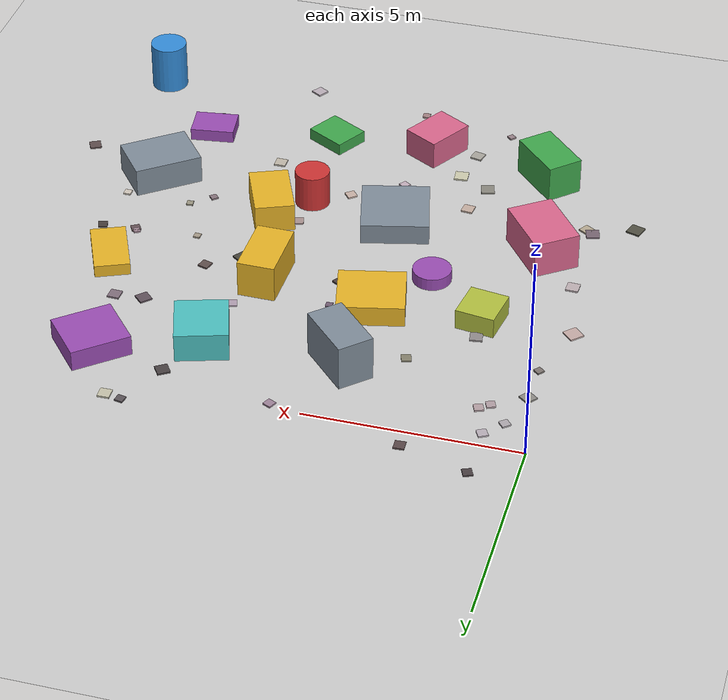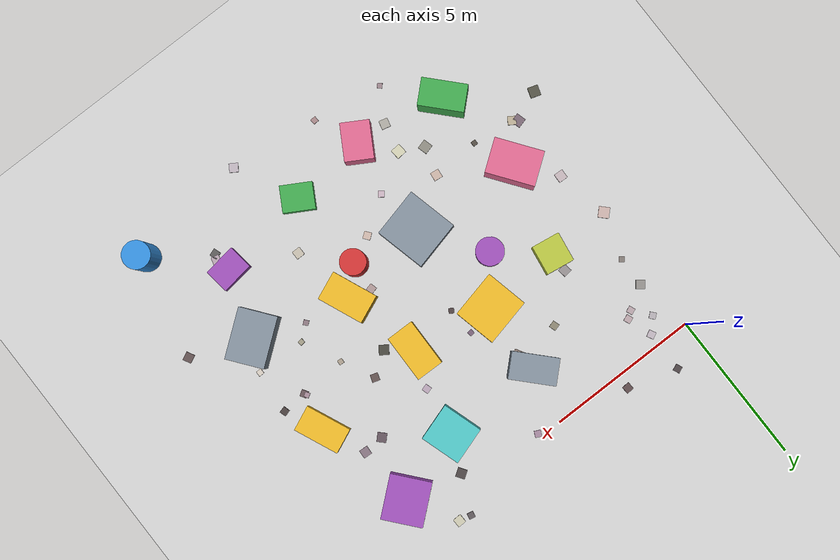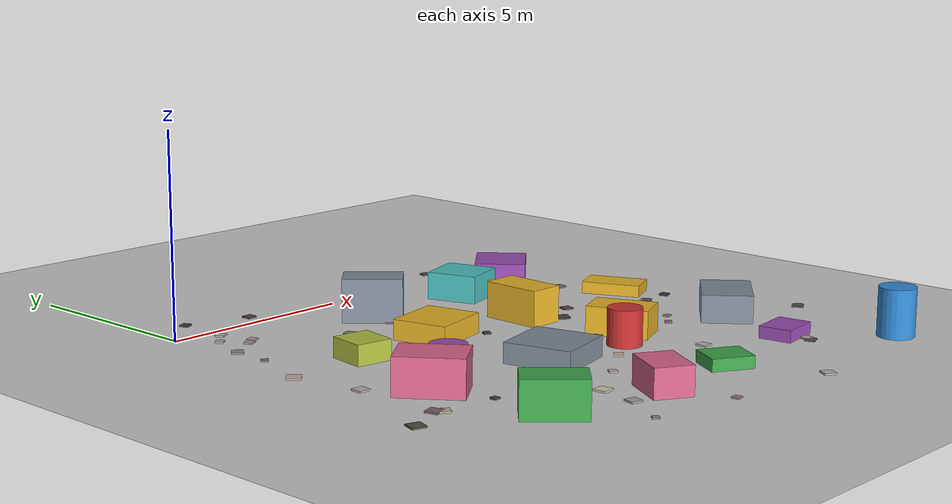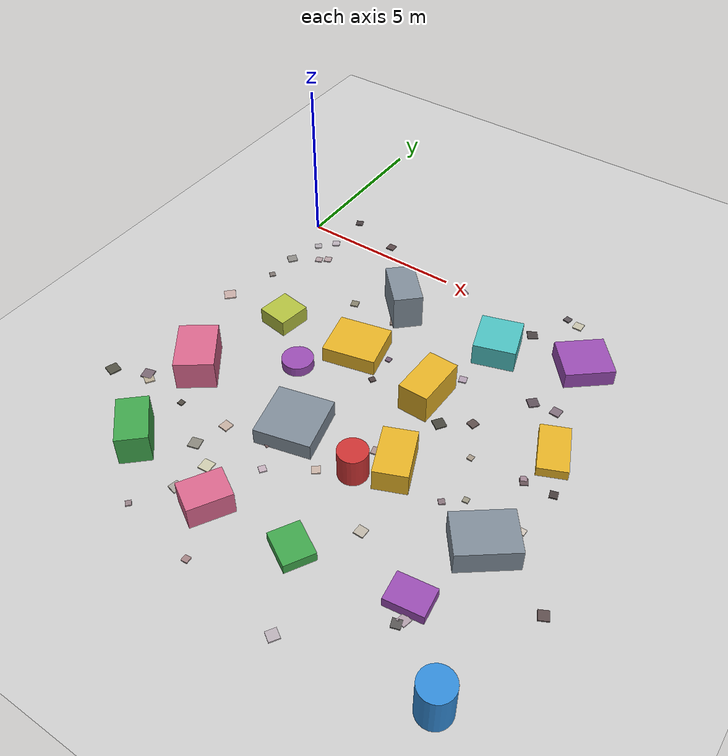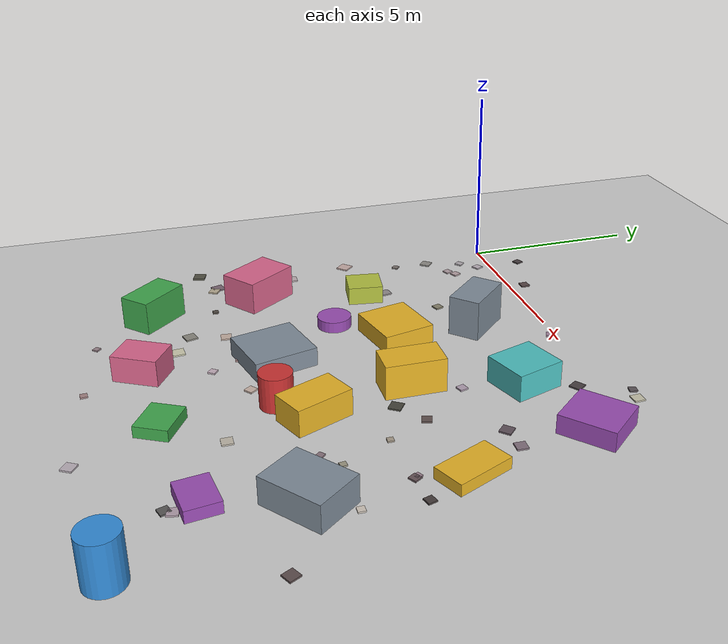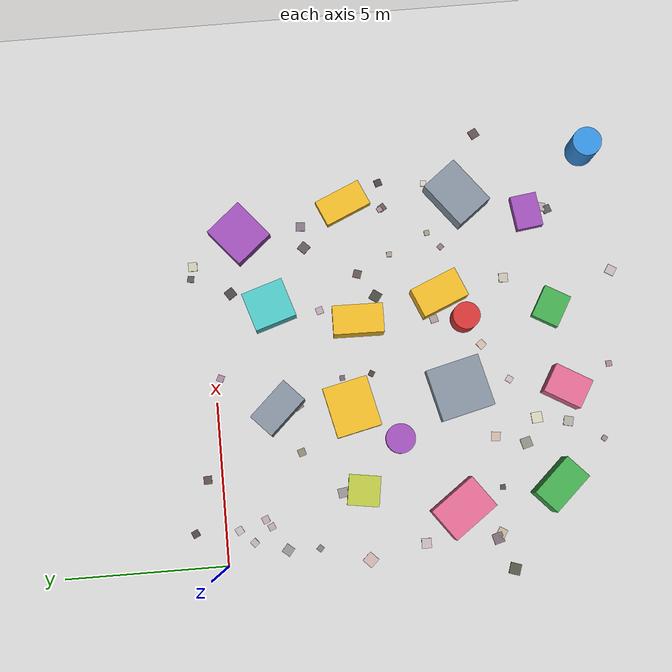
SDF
<sdf version="1.6">
 <world name="town_world">
  <model name="ground_plane">
   <static>true</static>
   <link name="link">
    <collision name="collision">
     <geometry><plane><normal>0 0 1</normal><size>60 60</size></plane></geometry>
     <surface><friction><ode><mu>1.0</mu><mu2>1.0</mu2></ode></friction></surface>
    </collision>
    <visual name="visual">
     <cast_shadows>false</cast_shadows>
     <geometry><plane><normal>0 0 1</normal><size>60 60</size></plane></geometry>
     <material>
      <script><uri>file://media/materials/scripts/gazebo.material</uri><name>Gazebo/CheckerBoard</name></script>
     </material>
    </visual>
   </link>
  </model>
  <model name="bld_30">
   <static>true</static>
   <pose>1.65 -10.20 0.45 0 0 0.751</pose>
   <link name="l">
    <collision name="c"><geometry><box><size>0.88 1.46 0.90</size></box></geometry></collision>
    <visual name="v">
     <geometry><box><size>0.88 1.46 0.90</size></box></geometry>
     <material><ambient>0.25 0.65 0.3 1</ambient><diffuse>0.25 0.65 0.3 1</diffuse></material>
    </visual>
   </link>
  </model>
  <model name="bld_31">
   <static>true</static>
   <pose>1.18 -7.21 0.45 0 0 0.630</pose>
   <link name="l">
    <collision name="c"><geometry><box><size>1.13 1.60 0.90</size></box></geometry></collision>
    <visual name="v">
     <geometry><box><size>1.13 1.60 0.90</size></box></geometry>
     <material><ambient>0.85 0.4 0.55 1</ambient><diffuse>0.85 0.4 0.55 1</diffuse></material>
    </visual>
   </link>
  </model>
  <model name="bld_32">
   <static>true</static>
   <pose>1.95 -4.28 0.25 0 0 1.421</pose>
   <link name="l">
    <collision name="c"><geometry><box><size>0.97 0.93 0.50</size></box></geometry></collision>
    <visual name="v">
     <geometry><box><size>0.97 0.93 0.50</size></box></geometry>
     <material><ambient>0.7 0.75 0.25 1</ambient><diffuse>0.7 0.75 0.25 1</diffuse></material>
    </visual>
   </link>
  </model>
  <model name="bld_36">
   <static>true</static>
   <pose>4.59 -10.74 0.35 0 0 1.040</pose>
   <link name="l">
    <collision name="c"><geometry><box><size>1.22 0.93 0.70</size></box></geometry></collision>
    <visual name="v">
     <geometry><box><size>1.22 0.93 0.70</size></box></geometry>
     <material><ambient>0.85 0.4 0.55 1</ambient><diffuse>0.85 0.4 0.55 1</diffuse></material>
    </visual>
   </link>
  </model>
  <model name="bld_37">
   <static>true</static>
   <pose>4.82 -7.48 0.25 0 0 0.238</pose>
   <link name="l">
    <collision name="c"><geometry><box><size>1.63 1.68 0.50</size></box></geometry></collision>
    <visual name="v">
     <geometry><box><size>1.63 1.68 0.50</size></box></geometry>
     <material><ambient>0.5 0.55 0.6 1</ambient><diffuse>0.5 0.55 0.6 1</diffuse></material>
    </visual>
   </link>
  </model>
  <model name="bld_38">
   <static>true</static>
   <pose>4.51 -4.13 0.25 0 0 0.222</pose>
   <link name="l">
    <collision name="c"><geometry><box><size>1.58 1.41 0.50</size></box></geometry></collision>
    <visual name="v">
     <geometry><box><size>1.58 1.41 0.50</size></box></geometry>
     <material><ambient>0.9 0.7 0.15 1</ambient><diffuse>0.9 0.7 0.15 1</diffuse></material>
    </visual>
   </link>
  </model>
  <model name="bld_39">
   <static>true</static>
   <pose>4.62 -1.88 0.55 0 0 0.758</pose>
   <link name="l">
    <collision name="c"><geometry><box><size>0.86 1.48 1.10</size></box></geometry></collision>
    <visual name="v">
     <geometry><box><size>0.86 1.48 1.10</size></box></geometry>
     <material><ambient>0.5 0.55 0.6 1</ambient><diffuse>0.5 0.55 0.6 1</diffuse></material>
    </visual>
   </link>
  </model>
  <model name="bld_44">
   <static>true</static>
   <pose>7.12 -10.56 0.15 0 0 1.051</pose>
   <link name="l">
    <collision name="c"><geometry><box><size>0.87 1.04 0.30</size></box></geometry></collision>
    <visual name="v">
     <geometry><box><size>0.87 1.04 0.30</size></box></geometry>
     <material><ambient>0.25 0.65 0.3 1</ambient><diffuse>0.25 0.65 0.3 1</diffuse></material>
    </visual>
   </link>
  </model>
  <model name="bld_45">
   <static>true</static>
   <pose>7.78 -7.10 0.35 0 0 0.397</pose>
   <link name="l">
    <collision name="c"><geometry><box><size>0.95 1.52 0.70</size></box></geometry></collision>
    <visual name="v">
     <geometry><box><size>0.95 1.52 0.70</size></box></geometry>
     <material><ambient>0.9 0.7 0.15 1</ambient><diffuse>0.9 0.7 0.15 1</diffuse></material>
    </visual>
   </link>
  </model>
  <model name="bld_46">
   <static>true</static>
   <pose>7.14 -4.53 0.45 0 0 1.554</pose>
   <link name="l">
    <collision name="c"><geometry><box><size>1.55 0.89 0.90</size></box></geometry></collision>
    <visual name="v">
     <geometry><box><size>1.55 0.89 0.90</size></box></geometry>
     <material><ambient>0.9 0.7 0.15 1</ambient><diffuse>0.9 0.7 0.15 1</diffuse></material>
    </visual>
   </link>
  </model>
  <model name="bld_47">
   <static>true</static>
   <pose>7.83 -1.84 0.35 0 0 0.307</pose>
   <link name="l">
    <collision name="c"><geometry><box><size>1.23 1.32 0.70</size></box></geometry></collision>
    <visual name="v">
     <geometry><box><size>1.23 1.32 0.70</size></box></geometry>
     <material><ambient>0.3 0.75 0.75 1</ambient><diffuse>0.3 0.75 0.75 1</diffuse></material>
    </visual>
   </link>
  </model>
  <model name="bld_52">
   <static>true</static>
   <pose>10.18 -10.10 0.15 0 0 0.131</pose>
   <link name="l">
    <collision name="c"><geometry><box><size>1.07 0.82 0.30</size></box></geometry></collision>
    <visual name="v">
     <geometry><box><size>1.07 0.82 0.30</size></box></geometry>
     <material><ambient>0.6 0.3 0.7 1</ambient><diffuse>0.6 0.3 0.7 1</diffuse></material>
    </visual>
   </link>
  </model>
  <model name="bld_53">
   <static>true</static>
   <pose>10.86 -7.93 0.35 0 0 0.656</pose>
   <link name="l">
    <collision name="c"><geometry><box><size>1.66 1.25 0.70</size></box></geometry></collision>
    <visual name="v">
     <geometry><box><size>1.66 1.25 0.70</size></box></geometry>
     <material><ambient>0.5 0.55 0.6 1</ambient><diffuse>0.5 0.55 0.6 1</diffuse></material>
    </visual>
   </link>
  </model>
  <model name="bld_54">
   <static>true</static>
   <pose>10.92 -4.38 0.15 0 0 0.411</pose>
   <link name="l">
    <collision name="c"><geometry><box><size>0.84 1.51 0.30</size></box></geometry></collision>
    <visual name="v">
     <geometry><box><size>0.84 1.51 0.30</size></box></geometry>
     <material><ambient>0.9 0.7 0.15 1</ambient><diffuse>0.9 0.7 0.15 1</diffuse></material>
    </visual>
   </link>
  </model>
  <model name="bld_55">
   <static>true</static>
   <pose>10.18 -1.07 0.25 0 0 0.700</pose>
   <link name="l">
    <collision name="c"><geometry><box><size>1.43 1.33 0.50</size></box></geometry></collision>
    <visual name="v">
     <geometry><box><size>1.43 1.33 0.50</size></box></geometry>
     <material><ambient>0.6 0.3 0.7 1</ambient><diffuse>0.6 0.3 0.7 1</diffuse></material>
    </visual>
   </link>
  </model>
  <model name="landmark_1">
   <static>true</static>
   <pose>12.00 -12.00 0.60 0 0 0</pose>
   <link name="l">
    <collision name="c">
     <geometry><cylinder><radius>0.45</radius><length>1.20</length></cylinder></geometry>
    </collision>
    <visual name="v">
     <geometry><cylinder><radius>0.45</radius><length>1.20</length></cylinder></geometry>
     <material><ambient>0.2 0.55 0.85 1</ambient><diffuse>0.2 0.55 0.85 1</diffuse></material>
    </visual>
   </link>
  </model>
  <model name="tank_6">
   <static>true</static>
   <pose>3.43 -5.54 0.15 0 0 0</pose>
   <link name="l">
    <collision name="c">
     <geometry><cylinder><radius>0.46</radius><length>0.30</length></cylinder></geometry>
    </collision>
    <visual name="v">
     <geometry><cylinder><radius>0.46</radius><length>0.30</length></cylinder></geometry>
     <material><ambient>0.6 0.3 0.7 1</ambient><diffuse>0.6 0.3 0.7 1</diffuse></material>
    </visual>
   </link>
  </model>
  <model name="tank_7">
   <static>true</static>
   <pose>6.97 -7.83 0.45 0 0 0</pose>
   <link name="l">
    <collision name="c">
     <geometry><cylinder><radius>0.42</radius><length>0.90</length></cylinder></geometry>
    </collision>
    <visual name="v">
     <geometry><cylinder><radius>0.42</radius><length>0.90</length></cylinder></geometry>
     <material><ambient>0.8 0.2 0.2 1</ambient><diffuse>0.8 0.2 0.2 1</diffuse></material>
    </visual>
   </link>
  </model>
  <model name="ft_0">
   <static>true</static>
   <pose>5.74 -0.15 0.02 0 0 1.123</pose>
   <link name="l">
    <collision name="c"><geometry><box><size>0.21 0.21 0.04</size></box></geometry></collision>
    <visual name="v">
     <geometry><box><size>0.21 0.21 0.04</size></box></geometry>
     <material>
      <ambient>0.6212243019486343 0.5149641599541805 0.5994637013708025 1</ambient>
      <diffuse>0.6212243019486343 0.5149641599541805 0.5994637013708025 1</diffuse>
     </material>
    </visual>
   </link>
  </model>
  <model name="ft_1">
   <static>true</static>
   <pose>0.34 -1.84 0.02 0 0 0.893</pose>
   <link name="l">
    <collision name="c"><geometry><box><size>0.29 0.29 0.04</size></box></geometry></collision>
    <visual name="v">
     <geometry><box><size>0.29 0.29 0.04</size></box></geometry>
     <material>
      <ambient>0.5533246210484546 0.5433523449996879 0.5259756838779945 1</ambient>
      <diffuse>0.5533246210484546 0.5433523449996879 0.5259756838779945 1</diffuse>
     </material>
    </visual>
   </link>
  </model>
  <model name="ft_2">
   <static>true</static>
   <pose>8.14 -12.58 0.02 0 0 1.009</pose>
   <link name="l">
    <collision name="c"><geometry><box><size>0.29 0.29 0.04</size></box></geometry></collision>
    <visual name="v">
     <geometry><box><size>0.29 0.29 0.04</size></box></geometry>
     <material>
      <ambient>0.7287803123570817 0.686683942190973 0.722378371948897 1</ambient>
      <diffuse>0.7287803123570817 0.686683942190973 0.722378371948897 1</diffuse>
     </material>
    </visual>
   </link>
  </model>
  <model name="ft_5">
   <static>true</static>
   <pose>10.34 -10.61 0.02 0 0 1.328</pose>
   <link name="l">
    <collision name="c"><geometry><box><size>0.26 0.26 0.04</size></box></geometry></collision>
    <visual name="v">
     <geometry><box><size>0.26 0.26 0.04</size></box></geometry>
     <material>
      <ambient>0.69743674577827 0.6240466522581352 0.6708251790984469 1</ambient>
      <diffuse>0.69743674577827 0.6240466522581352 0.6708251790984469 1</diffuse>
     </material>
    </visual>
   </link>
  </model>
  <model name="ft_7">
   <static>true</static>
   <pose>10.67 -5.53 0.02 0 0 0.521</pose>
   <link name="l">
    <collision name="c"><geometry><box><size>0.16 0.16 0.04</size></box></geometry></collision>
    <visual name="v">
     <geometry><box><size>0.16 0.16 0.04</size></box></geometry>
     <material>
      <ambient>0.6296757056240572 0.528712259388979 0.5792645326275048 1</ambient>
      <diffuse>0.6296757056240572 0.528712259388979 0.5792645326275048 1</diffuse>
     </material>
    </visual>
   </link>
  </model>
  <model name="ft_14">
   <static>true</static>
   <pose>4.72 -2.46 0.02 0 0 0.520</pose>
   <link name="l">
    <collision name="c"><geometry><box><size>0.30 0.30 0.04</size></box></geometry></collision>
    <visual name="v">
     <geometry><box><size>0.30 0.30 0.04</size></box></geometry>
     <material>
      <ambient>0.49970871661883653 0.43735567713640094 0.4118508649570005 1</ambient>
      <diffuse>0.49970871661883653 0.43735567713640094 0.4118508649570005 1</diffuse>
     </material>
    </visual>
   </link>
  </model>
  <model name="ft_17">
   <static>true</static>
   <pose>9.21 -5.70 0.02 0 0 1.525</pose>
   <link name="l">
    <collision name="c"><geometry><box><size>0.16 0.16 0.04</size></box></geometry></collision>
    <visual name="v">
     <geometry><box><size>0.16 0.16 0.04</size></box></geometry>
     <material>
      <ambient>0.6471869079125964 0.5999375387873627 0.537024614238678 1</ambient>
      <diffuse>0.6471869079125964 0.5999375387873627 0.537024614238678 1</diffuse>
     </material>
    </visual>
   </link>
  </model>
  <model name="ft_20">
   <static>true</static>
   <pose>2.99 -9.40 0.02 0 0 0.268</pose>
   <link name="l">
    <collision name="c"><geometry><box><size>0.32 0.32 0.04</size></box></geometry></collision>
    <visual name="v">
     <geometry><box><size>0.32 0.32 0.04</size></box></geometry>
     <material>
      <ambient>0.5413450481696884 0.5318071161237796 0.49263570803236634 1</ambient>
      <diffuse>0.5413450481696884 0.5318071161237796 0.49263570803236634 1</diffuse>
     </material>
    </visual>
   </link>
  </model>
  <model name="ft_23">
   <static>true</static>
   <pose>1.31 -1.22 0.02 0 0 0.383</pose>
   <link name="l">
    <collision name="c"><geometry><box><size>0.22 0.22 0.04</size></box></geometry></collision>
    <visual name="v">
     <geometry><box><size>0.22 0.22 0.04</size></box></geometry>
     <material>
      <ambient>0.7055487146226783 0.6247525246963589 0.6417368143430442 1</ambient>
      <diffuse>0.7055487146226783 0.6247525246963589 0.6417368143430442 1</diffuse>
     </material>
    </visual>
   </link>
  </model>
  <model name="ft_25">
   <static>true</static>
   <pose>9.64 -3.05 0.02 0 0 0.782</pose>
   <link name="l">
    <collision name="c"><geometry><box><size>0.30 0.30 0.04</size></box></geometry></collision>
    <visual name="v">
     <geometry><box><size>0.30 0.30 0.04</size></box></geometry>
     <material>
      <ambient>0.3760029615917763 0.3211245658687852 0.35736156220811865 1</ambient>
      <diffuse>0.3760029615917763 0.3211245658687852 0.35736156220811865 1</diffuse>
     </material>
    </visual>
   </link>
  </model>
  <model name="ft_26">
   <static>true</static>
   <pose>1.93 -3.64 0.02 0 0 0.145</pose>
   <link name="l">
    <collision name="c"><geometry><box><size>0.29 0.29 0.04</size></box></geometry></collision>
    <visual name="v">
     <geometry><box><size>0.29 0.29 0.04</size></box></geometry>
     <material>
      <ambient>0.5675354181064378 0.5437343327571231 0.5503541093900503 1</ambient>
      <diffuse>0.5675354181064378 0.5437343327571231 0.5503541093900503 1</diffuse>
     </material>
    </visual>
   </link>
  </model>
  <model name="ft_27">
   <static>true</static>
   <pose>10.32 -3.00 0.02 0 0 1.520</pose>
   <link name="l">
    <collision name="c"><geometry><box><size>0.28 0.28 0.04</size></box></geometry></collision>
    <visual name="v">
     <geometry><box><size>0.28 0.28 0.04</size></box></geometry>
     <material>
      <ambient>0.5091020120111565 0.4390512059758533 0.4901979308450359 1</ambient>
      <diffuse>0.5091020120111565 0.4390512059758533 0.4901979308450359 1</diffuse>
     </material>
    </visual>
   </link>
  </model>
  <model name="ft_33">
   <static>true</static>
   <pose>11.53 -8.02 0.02 0 0 1.564</pose>
   <link name="l">
    <collision name="c"><geometry><box><size>0.20 0.20 0.04</size></box></geometry></collision>
    <visual name="v">
     <geometry><box><size>0.20 0.20 0.04</size></box></geometry>
     <material>
      <ambient>0.7242923182296495 0.5796007349743735 0.6572918483046541 1</ambient>
      <diffuse>0.7242923182296495 0.5796007349743735 0.6572918483046541 1</diffuse>
     </material>
    </visual>
   </link>
  </model>
  <model name="ft_38">
   <static>true</static>
   <pose>6.91 -7.96 0.02 0 0 0.979</pose>
   <link name="l">
    <collision name="c"><geometry><box><size>0.24 0.24 0.04</size></box></geometry></collision>
    <visual name="v">
     <geometry><box><size>0.24 0.24 0.04</size></box></geometry>
     <material>
      <ambient>0.4090131734034601 0.39996039290546226 0.336127685722852 1</ambient>
      <diffuse>0.4090131734034601 0.39996039290546226 0.336127685722852 1</diffuse>
     </material>
    </visual>
   </link>
  </model>
  <model name="ft_41">
   <static>true</static>
   <pose>5.51 -4.83 0.02 0 0 1.024</pose>
   <link name="l">
    <collision name="c"><geometry><box><size>0.17 0.17 0.04</size></box></geometry></collision>
    <visual name="v">
     <geometry><box><size>0.17 0.17 0.04</size></box></geometry>
     <material>
      <ambient>0.2976167154234446 0.24795244630057883 0.2494434930817707 1</ambient>
      <diffuse>0.2976167154234446 0.24795244630057883 0.2494434930817707 1</diffuse>
     </material>
    </visual>
   </link>
  </model>
  <model name="ft_42">
   <static>true</static>
   <pose>0.64 -0.84 0.02 0 0 0.695</pose>
   <link name="l">
    <collision name="c"><geometry><box><size>0.21 0.21 0.04</size></box></geometry></collision>
    <visual name="v">
     <geometry><box><size>0.21 0.21 0.04</size></box></geometry>
     <material>
      <ambient>0.6852263899681839 0.6631795048904755 0.6831683646435681 1</ambient>
      <diffuse>0.6852263899681839 0.6631795048904755 0.6831683646435681 1</diffuse>
     </material>
    </visual>
   </link>
  </model>
  <model name="ft_45">
   <static>true</static>
   <pose>1.08 -1.39 0.02 0 0 0.389</pose>
   <link name="l">
    <collision name="c"><geometry><box><size>0.21 0.21 0.04</size></box></geometry></collision>
    <visual name="v">
     <geometry><box><size>0.21 0.21 0.04</size></box></geometry>
     <material>
      <ambient>0.6923918823763431 0.6196262509453655 0.6413850515857581 1</ambient>
      <diffuse>0.6923918823763431 0.6196262509453655 0.6413850515857581 1</diffuse>
     </material>
    </visual>
   </link>
  </model>
  <model name="ft_46">
   <static>true</static>
   <pose>3.26 -2.48 0.02 0 0 0.306</pose>
   <link name="l">
    <collision name="c"><geometry><box><size>0.23 0.23 0.04</size></box></geometry></collision>
    <visual name="v">
     <geometry><box><size>0.23 0.23 0.04</size></box></geometry>
     <material>
      <ambient>0.5284303682859834 0.5076459421284903 0.42929724311284856 1</ambient>
      <diffuse>0.5284303682859834 0.5076459421284903 0.42929724311284856 1</diffuse>
     </material>
    </visual>
   </link>
  </model>
  <model name="ft_51">
   <static>true</static>
   <pose>4.99 -9.07 0.02 0 0 0.935</pose>
   <link name="l">
    <collision name="c"><geometry><box><size>0.20 0.20 0.04</size></box></geometry></collision>
    <visual name="v">
     <geometry><box><size>0.20 0.20 0.04</size></box></geometry>
     <material>
      <ambient>0.7667454227188919 0.684056712904792 0.7335964161770084 1</ambient>
      <diffuse>0.7667454227188919 0.684056712904792 0.7335964161770084 1</diffuse>
     </material>
    </visual>
   </link>
  </model>
  <model name="ft_52">
   <static>true</static>
   <pose>0.31 -2.82 0.02 0 0 0.855</pose>
   <link name="l">
    <collision name="c"><geometry><box><size>0.18 0.18 0.04</size></box></geometry></collision>
    <visual name="v">
     <geometry><box><size>0.18 0.18 0.04</size></box></geometry>
     <material>
      <ambient>0.49465406118959043 0.45998336208344476 0.44337722242859967 1</ambient>
      <diffuse>0.49465406118959043 0.45998336208344476 0.44337722242859967 1</diffuse>
     </material>
    </visual>
   </link>
  </model>
  <model name="ft_59">
   <static>true</static>
   <pose>9.80 -6.94 0.02 0 0 0.118</pose>
   <link name="l">
    <collision name="c"><geometry><box><size>0.16 0.16 0.04</size></box></geometry></collision>
    <visual name="v">
     <geometry><box><size>0.16 0.16 0.04</size></box></geometry>
     <material>
      <ambient>0.6102959870083563 0.5892926552796498 0.511935999681384 1</ambient>
      <diffuse>0.6102959870083563 0.5892926552796498 0.511935999681384 1</diffuse>
     </material>
    </visual>
   </link>
  </model>
  <model name="ft_60">
   <static>true</static>
   <pose>0.33 -8.38 0.02 0 0 1.001</pose>
   <link name="l">
    <collision name="c"><geometry><box><size>0.27 0.27 0.04</size></box></geometry></collision>
    <visual name="v">
     <geometry><box><size>0.27 0.27 0.04</size></box></geometry>
     <material>
      <ambient>0.7149989252289068 0.6670590477058719 0.5729056903240066 1</ambient>
      <diffuse>0.7149989252289068 0.6670590477058719 0.5729056903240066 1</diffuse>
     </material>
    </visual>
   </link>
  </model>
  <model name="ft_61">
   <static>true</static>
   <pose>5.45 -3.91 0.02 0 0 0.060</pose>
   <link name="l">
    <collision name="c"><geometry><box><size>0.16 0.16 0.04</size></box></geometry></collision>
    <visual name="v">
     <geometry><box><size>0.16 0.16 0.04</size></box></geometry>
     <material>
      <ambient>0.45400993589178984 0.3672183573323116 0.4539984729818821 1</ambient>
      <diffuse>0.45400993589178984 0.3672183573323116 0.4539984729818821 1</diffuse>
     </material>
    </visual>
   </link>
  </model>
  <model name="ft_70">
   <static>true</static>
   <pose>7.92 -5.16 0.02 0 0 0.954</pose>
   <link name="l">
    <collision name="c"><geometry><box><size>0.32 0.32 0.04</size></box></geometry></collision>
    <visual name="v">
     <geometry><box><size>0.32 0.32 0.04</size></box></geometry>
     <material>
      <ambient>0.27609840322530227 0.2712831715219105 0.2382467461829883 1</ambient>
      <diffuse>0.27609840322530227 0.2712831715219105 0.2382467461829883 1</diffuse>
     </material>
    </visual>
   </link>
  </model>
  <model name="ft_71">
   <static>true</static>
   <pose>3.55 -10.76 0.02 0 0 1.345</pose>
   <link name="l">
    <collision name="c"><geometry><box><size>0.29 0.29 0.04</size></box></geometry></collision>
    <visual name="v">
     <geometry><box><size>0.29 0.29 0.04</size></box></geometry>
     <material>
      <ambient>0.6629299394393968 0.6484962712288922 0.6152419982849029 1</ambient>
      <diffuse>0.6629299394393968 0.6484962712288922 0.6152419982849029 1</diffuse>
     </material>
    </visual>
   </link>
  </model>
  <model name="ft_90">
   <static>true</static>
   <pose>2.93 -11.81 0.02 0 0 0.839</pose>
   <link name="l">
    <collision name="c"><geometry><box><size>0.16 0.16 0.04</size></box></geometry></collision>
    <visual name="v">
     <geometry><box><size>0.16 0.16 0.04</size></box></geometry>
     <material>
      <ambient>0.5902726993931646 0.5080759015620239 0.5339711619061518 1</ambient>
      <diffuse>0.5902726993931646 0.5080759015620239 0.5339711619061518 1</diffuse>
     </material>
    </visual>
   </link>
  </model>
  <model name="ft_94">
   <static>true</static>
   <pose>2.65 0.46 0.02 0 0 0.040</pose>
   <link name="l">
    <collision name="c"><geometry><box><size>0.25 0.25 0.04</size></box></geometry></collision>
    <visual name="v">
     <geometry><box><size>0.25 0.25 0.04</size></box></geometry>
     <material>
      <ambient>0.34905949936883207 0.27927549458253204 0.28354302204495996 1</ambient>
      <diffuse>0.34905949936883207 0.27927549458253204 0.28354302204495996 1</diffuse>
     </material>
    </visual>
   </link>
  </model>
  <model name="ft_99">
   <static>true</static>
   <pose>3.74 -9.80 0.02 0 0 0.082</pose>
   <link name="l">
    <collision name="c"><geometry><box><size>0.33 0.33 0.04</size></box></geometry></collision>
    <visual name="v">
     <geometry><box><size>0.33 0.33 0.04</size></box></geometry>
     <material>
      <ambient>0.8051069141705746 0.7959046429172791 0.6864822250103945 1</ambient>
      <diffuse>0.8051069141705746 0.7959046429172791 0.6864822250103945 1</diffuse>
     </material>
    </visual>
   </link>
  </model>
  <model name="ft_101">
   <static>true</static>
   <pose>10.25 -10.78 0.02 0 0 0.318</pose>
   <link name="l">
    <collision name="c"><geometry><box><size>0.25 0.25 0.04</size></box></geometry></collision>
    <visual name="v">
     <geometry><box><size>0.25 0.25 0.04</size></box></geometry>
     <material>
      <ambient>0.3518617477731495 0.3451554404536445 0.34072341610346013 1</ambient>
      <diffuse>0.3518617477731495 0.3451554404536445 0.34072341610346013 1</diffuse>
     </material>
    </visual>
   </link>
  </model>
  <model name="ft_105">
   <static>true</static>
   <pose>1.70 -8.54 0.02 0 0 1.535</pose>
   <link name="l">
    <collision name="c"><geometry><box><size>0.16 0.16 0.04</size></box></geometry></collision>
    <visual name="v">
     <geometry><box><size>0.16 0.16 0.04</size></box></geometry>
     <material>
      <ambient>0.31713582623010145 0.2931584018565354 0.26397188987887027 1</ambient>
      <diffuse>0.31713582623010145 0.2931584018565354 0.26397188987887027 1</diffuse>
     </material>
    </visual>
   </link>
  </model>
  <model name="ft_106">
   <static>true</static>
   <pose>5.22 -12.20 0.02 0 0 0.073</pose>
   <link name="l">
    <collision name="c"><geometry><box><size>0.18 0.18 0.04</size></box></geometry></collision>
    <visual name="v">
     <geometry><box><size>0.18 0.18 0.04</size></box></geometry>
     <material>
      <ambient>0.6361268384779012 0.5143271650171902 0.5175308738569278 1</ambient>
      <diffuse>0.6361268384779012 0.5143271650171902 0.5175308738569278 1</diffuse>
     </material>
    </visual>
   </link>
  </model>
  <model name="ft_116">
   <static>true</static>
   <pose>11.40 -6.98 0.02 0 0 1.556</pose>
   <link name="l">
    <collision name="c"><geometry><box><size>0.18 0.18 0.04</size></box></geometry></collision>
    <visual name="v">
     <geometry><box><size>0.18 0.18 0.04</size></box></geometry>
     <material>
      <ambient>0.813226792081587 0.7752994471212497 0.7303251038572333 1</ambient>
      <diffuse>0.813226792081587 0.7752994471212497 0.7303251038572333 1</diffuse>
     </material>
    </visual>
   </link>
  </model>
  <model name="ft_117">
   <static>true</static>
   <pose>1.59 -10.28 0.02 0 0 1.170</pose>
   <link name="l">
    <collision name="c"><geometry><box><size>0.22 0.22 0.04</size></box></geometry></collision>
    <visual name="v">
     <geometry><box><size>0.22 0.22 0.04</size></box></geometry>
     <material>
      <ambient>0.30708908171029636 0.3026979896980118 0.30044623656053304 1</ambient>
      <diffuse>0.30708908171029636 0.3026979896980118 0.30044623656053304 1</diffuse>
     </material>
    </visual>
   </link>
  </model>
  <model name="ft_122">
   <static>true</static>
   <pose>0.20 -6.05 0.02 0 0 1.530</pose>
   <link name="l">
    <collision name="c"><geometry><box><size>0.30 0.30 0.04</size></box></geometry></collision>
    <visual name="v">
     <geometry><box><size>0.30 0.30 0.04</size></box></geometry>
     <material>
      <ambient>0.7459144331976578 0.6888269837931847 0.7046409131148597 1</ambient>
      <diffuse>0.7459144331976578 0.6888269837931847 0.7046409131148597 1</diffuse>
     </material>
    </visual>
   </link>
  </model>
  <model name="ft_124">
   <static>true</static>
   <pose>12.87 -8.72 0.02 0 0 0.474</pose>
   <link name="l">
    <collision name="c"><geometry><box><size>0.28 0.28 0.04</size></box></geometry></collision>
    <visual name="v">
     <geometry><box><size>0.28 0.28 0.04</size></box></geometry>
     <material>
      <ambient>0.3672592284570615 0.3048956803769588 0.30470169833790967 1</ambient>
      <diffuse>0.3672592284570615 0.3048956803769588 0.30470169833790967 1</diffuse>
     </material>
    </visual>
   </link>
  </model>
  <model name="ft_131">
   <static>true</static>
   <pose>9.32 0.47 0.02 0 0 0.017</pose>
   <link name="l">
    <collision name="c"><geometry><box><size>0.28 0.28 0.04</size></box></geometry></collision>
    <visual name="v">
     <geometry><box><size>0.28 0.28 0.04</size></box></geometry>
     <material>
      <ambient>0.7737957068520578 0.7574677537585697 0.6698058553943032 1</ambient>
      <diffuse>0.7737957068520578 0.7574677537585697 0.6698058553943032 1</diffuse>
     </material>
    </visual>
   </link>
  </model>
  <model name="ft_134">
   <static>true</static>
   <pose>7.61 -3.38 0.02 0 0 0.289</pose>
   <link name="l">
    <collision name="c"><geometry><box><size>0.22 0.22 0.04</size></box></geometry></collision>
    <visual name="v">
     <geometry><box><size>0.22 0.22 0.04</size></box></geometry>
     <material>
      <ambient>0.6952659589706627 0.6197475041712599 0.6939140801476152 1</ambient>
      <diffuse>0.6952659589706627 0.6197475041712599 0.6939140801476152 1</diffuse>
     </material>
    </visual>
   </link>
  </model>
  <model name="ft_139">
   <static>true</static>
   <pose>8.18 -9.20 0.02 0 0 1.564</pose>
   <link name="l">
    <collision name="c"><geometry><box><size>0.28 0.28 0.04</size></box></geometry></collision>
    <visual name="v">
     <geometry><box><size>0.28 0.28 0.04</size></box></geometry>
     <material>
      <ambient>0.748419441962566 0.7177726869474687 0.6605978810384954 1</ambient>
      <diffuse>0.748419441962566 0.7177726869474687 0.6605978810384954 1</diffuse>
     </material>
    </visual>
   </link>
  </model>
  <model name="ft_142">
   <static>true</static>
   <pose>4.01 -4.67 0.02 0 0 0.240</pose>
   <link name="l">
    <collision name="c"><geometry><box><size>0.25 0.25 0.04</size></box></geometry></collision>
    <visual name="v">
     <geometry><box><size>0.25 0.25 0.04</size></box></geometry>
     <material>
      <ambient>0.6240183590529913 0.5098756050302494 0.6111652753832165 1</ambient>
      <diffuse>0.6240183590529913 0.5098756050302494 0.6111652753832165 1</diffuse>
     </material>
    </visual>
   </link>
  </model>
  <model name="ft_147">
   <static>true</static>
   <pose>3.55 -5.28 0.02 0 0 1.054</pose>
   <link name="l">
    <collision name="c"><geometry><box><size>0.25 0.25 0.04</size></box></geometry></collision>
    <visual name="v">
     <geometry><box><size>0.25 0.25 0.04</size></box></geometry>
     <material>
      <ambient>0.3778604635482824 0.3082294731902956 0.36571445919764606 1</ambient>
      <diffuse>0.3778604635482824 0.3082294731902956 0.36571445919764606 1</diffuse>
     </material>
    </visual>
   </link>
  </model>
  <model name="ft_151">
   <static>true</static>
   <pose>4.57 -8.31 0.02 0 0 1.156</pose>
   <link name="l">
    <collision name="c"><geometry><box><size>0.22 0.22 0.04</size></box></geometry></collision>
    <visual name="v">
     <geometry><box><size>0.22 0.22 0.04</size></box></geometry>
     <material>
      <ambient>0.6379129276954957 0.5129534107635505 0.5161825919510682 1</ambient>
      <diffuse>0.6379129276954957 0.5129534107635505 0.5161825919510682 1</diffuse>
     </material>
    </visual>
   </link>
  </model>
  <model name="ft_154">
   <static>true</static>
   <pose>10.72 -5.61 0.02 0 0 0.558</pose>
   <link name="l">
    <collision name="c"><geometry><box><size>0.22 0.22 0.04</size></box></geometry></collision>
    <visual name="v">
     <geometry><box><size>0.22 0.22 0.04</size></box></geometry>
     <material>
      <ambient>0.4009431744546932 0.3249821072217891 0.34394094248821794 1</ambient>
      <diffuse>0.4009431744546932 0.3249821072217891 0.34394094248821794 1</diffuse>
     </material>
    </visual>
   </link>
  </model>
  <model name="ft_155">
   <static>true</static>
   <pose>-0.16 -4.32 0.02 0 0 0.773</pose>
   <link name="l">
    <collision name="c"><geometry><box><size>0.35 0.35 0.04</size></box></geometry></collision>
    <visual name="v">
     <geometry><box><size>0.35 0.35 0.04</size></box></geometry>
     <material>
      <ambient>0.773778792499411 0.6723843984307866 0.6505207058314412 1</ambient>
      <diffuse>0.773778792499411 0.6723843984307866 0.6505207058314412 1</diffuse>
     </material>
    </visual>
   </link>
  </model>
  <model name="ft_158">
   <static>true</static>
   <pose>8.37 -0.65 0.02 0 0 0.590</pose>
   <link name="l">
    <collision name="c"><geometry><box><size>0.30 0.30 0.04</size></box></geometry></collision>
    <visual name="v">
     <geometry><box><size>0.30 0.30 0.04</size></box></geometry>
     <material>
      <ambient>0.2860892644034042 0.25752856083212006 0.25997788734441046 1</ambient>
      <diffuse>0.2860892644034042 0.25752856083212006 0.25997788734441046 1</diffuse>
     </material>
    </visual>
   </link>
  </model>
  <model name="ft_160">
   <static>true</static>
   <pose>3.26 -8.48 0.02 0 0 1.461</pose>
   <link name="l">
    <collision name="c"><geometry><box><size>0.28 0.28 0.04</size></box></geometry></collision>
    <visual name="v">
     <geometry><box><size>0.28 0.28 0.04</size></box></geometry>
     <material>
      <ambient>0.7715235085948302 0.6822692586236052 0.6327427456554099 1</ambient>
      <diffuse>0.7715235085948302 0.6822692586236052 0.6327427456554099 1</diffuse>
     </material>
    </visual>
   </link>
  </model>
  <model name="ft_166">
   <static>true</static>
   <pose>9.32 -7.33 0.02 0 0 0.708</pose>
   <link name="l">
    <collision name="c"><geometry><box><size>0.17 0.17 0.04</size></box></geometry></collision>
    <visual name="v">
     <geometry><box><size>0.17 0.17 0.04</size></box></geometry>
     <material>
      <ambient>0.5333990619381237 0.45610376635384464 0.48741896753624814 1</ambient>
      <diffuse>0.5333990619381237 0.45610376635384464 0.48741896753624814 1</diffuse>
     </material>
    </visual>
   </link>
  </model>
  <model name="ft_171">
   <static>true</static>
   <pose>-0.79 -8.67 0.02 0 0 1.259</pose>
   <link name="l">
    <collision name="c"><geometry><box><size>0.34 0.34 0.04</size></box></geometry></collision>
    <visual name="v">
     <geometry><box><size>0.34 0.34 0.04</size></box></geometry>
     <material>
      <ambient>0.320023243263061 0.31707215299715136 0.26651700231051995 1</ambient>
      <diffuse>0.320023243263061 0.31707215299715136 0.26651700231051995 1</diffuse>
     </material>
    </visual>
   </link>
  </model>
  <model name="ft_175">
   <static>true</static>
   <pose>7.06 -6.91 0.02 0 0 0.247</pose>
   <link name="l">
    <collision name="c"><geometry><box><size>0.24 0.24 0.04</size></box></geometry></collision>
    <visual name="v">
     <geometry><box><size>0.24 0.24 0.04</size></box></geometry>
     <material>
      <ambient>0.6631325230077728 0.5731488721639487 0.566052973344257 1</ambient>
      <diffuse>0.6631325230077728 0.5731488721639487 0.566052973344257 1</diffuse>
     </material>
    </visual>
   </link>
  </model>
  <model name="ft_178">
   <static>true</static>
   <pose>1.04 -0.40 0.02 0 0 0.486</pose>
   <link name="l">
    <collision name="c"><geometry><box><size>0.23 0.23 0.04</size></box></geometry></collision>
    <visual name="v">
     <geometry><box><size>0.23 0.23 0.04</size></box></geometry>
     <material>
      <ambient>0.7226141009487992 0.6824643034343388 0.7200526487383088 1</ambient>
      <diffuse>0.7226141009487992 0.6824643034343388 0.7200526487383088 1</diffuse>
     </material>
    </visual>
   </link>
  </model>
  <model name="ft_180">
   <static>true</static>
   <pose>1.05 0.94 0.02 0 0 0.407</pose>
   <link name="l">
    <collision name="c"><geometry><box><size>0.22 0.22 0.04</size></box></geometry></collision>
    <visual name="v">
     <geometry><box><size>0.22 0.22 0.04</size></box></geometry>
     <material>
      <ambient>0.28757874175697457 0.25296499060592553 0.2600309766003187 1</ambient>
      <diffuse>0.28757874175697457 0.25296499060592553 0.2600309766003187 1</diffuse>
     </material>
    </visual>
   </link>
  </model>
  <model name="ft_181">
   <static>true</static>
   <pose>8.67 -4.65 0.02 0 0 1.265</pose>
   <link name="l">
    <collision name="c"><geometry><box><size>0.25 0.25 0.04</size></box></geometry></collision>
    <visual name="v">
     <geometry><box><size>0.25 0.25 0.04</size></box></geometry>
     <material>
      <ambient>0.37112177843966226 0.31268447173218616 0.3037400432428835 1</ambient>
      <diffuse>0.37112177843966226 0.31268447173218616 0.3037400432428835 1</diffuse>
     </material>
    </visual>
   </link>
  </model>
  <model name="ft_189">
   <static>true</static>
   <pose>0.17 -8.25 0.02 0 0 0.270</pose>
   <link name="l">
    <collision name="c"><geometry><box><size>0.32 0.32 0.04</size></box></geometry></collision>
    <visual name="v">
     <geometry><box><size>0.32 0.32 0.04</size></box></geometry>
     <material>
      <ambient>0.47254665925697303 0.4002591753553322 0.44615128983258484 1</ambient>
      <diffuse>0.47254665925697303 0.4002591753553322 0.44615128983258484 1</diffuse>
     </material>
    </visual>
   </link>
  </model>
  <model name="ft_197">
   <static>true</static>
   <pose>6.14 -8.31 0.02 0 0 0.657</pose>
   <link name="l">
    <collision name="c"><geometry><box><size>0.24 0.24 0.04</size></box></geometry></collision>
    <visual name="v">
     <geometry><box><size>0.24 0.24 0.04</size></box></geometry>
     <material>
      <ambient>0.7835901862891508 0.6956668267595669 0.6502845682376859 1</ambient>
      <diffuse>0.7835901862891508 0.6956668267595669 0.6502845682376859 1</diffuse>
     </material>
    </visual>
   </link>
  </model>
  <model name="ft_203">
   <static>true</static>
   <pose>11.53 -5.55 0.02 0 0 0.284</pose>
   <link name="l">
    <collision name="c"><geometry><box><size>0.22 0.22 0.04</size></box></geometry></collision>
    <visual name="v">
     <geometry><box><size>0.22 0.22 0.04</size></box></geometry>
     <material>
      <ambient>0.27432874401799456 0.24189982458783407 0.2346524267563105 1</ambient>
      <diffuse>0.27432874401799456 0.24189982458783407 0.2346524267563105 1</diffuse>
     </material>
    </visual>
   </link>
  </model>
  <model name="ft_204">
   <static>true</static>
   <pose>8.93 0.56 0.02 0 0 1.396</pose>
   <link name="l">
    <collision name="c"><geometry><box><size>0.20 0.20 0.04</size></box></geometry></collision>
    <visual name="v">
     <geometry><box><size>0.20 0.20 0.04</size></box></geometry>
     <material>
      <ambient>0.35537649630030177 0.32699271574296634 0.3432205509413712 1</ambient>
      <diffuse>0.35537649630030177 0.32699271574296634 0.3432205509413712 1</diffuse>
     </material>
    </visual>
   </link>
  </model>
 </world>
</sdf>
